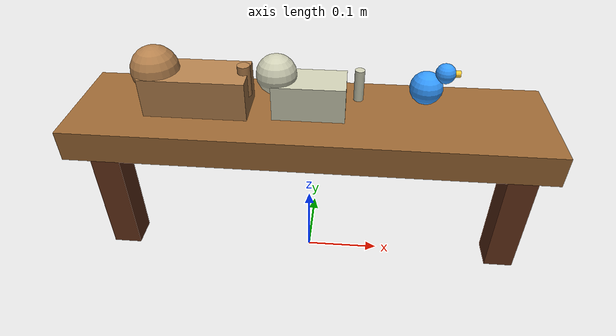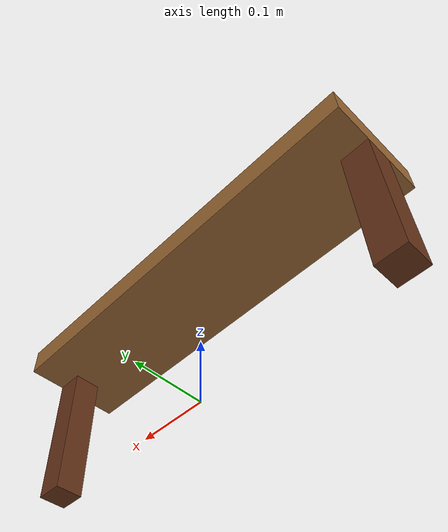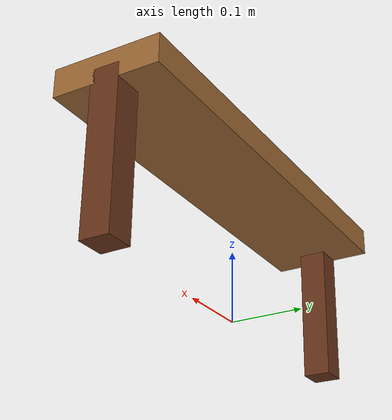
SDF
<?xml version="1.0"?>
<sdf version="1.7">
  <model name="bench_with_animals">
    <static>true</static>
    <link name="bench_link">
      <!-- Bench seat -->
      <visual name="bench_seat">
        <geometry>
          <box>
            <size>0.6 0.15 0.04</size>
          </box>
        </geometry>
        <pose>0 0 0.22 0 0 0</pose>
        <material>
          <ambient>0.6 0.4 0.2 1</ambient>
          <diffuse>0.6 0.4 0.2 1</diffuse>
        </material>
      </visual>
      <!-- Bench legs -->
      <visual name="bench_leg_left">
        <geometry>
          <box>
            <size>0.04 0.04 0.22</size>
          </box>
        </geometry>
        <pose>-0.28 0 0.11 0 0 0</pose>
        <material>
          <ambient>0.4 0.2 0.1 1</ambient>
          <diffuse>0.4 0.2 0.1 1</diffuse>
        </material>
      </visual>
      <visual name="bench_leg_right">
        <geometry>
          <box>
            <size>0.04 0.04 0.22</size>
          </box>
        </geometry>
        <pose>0.28 0 0.11 0 0 0</pose>
        <material>
          <ambient>0.4 0.2 0.1 1</ambient>
          <diffuse>0.4 0.2 0.1 1</diffuse>
        </material>
      </visual>
      <!-- Dog -->
      <visual name="dog_body">
        <geometry>
          <box>
            <size>0.13 0.06 0.06</size>
          </box>
        </geometry>
        <pose>-0.14 0 0.26 0 0 0</pose>
        <material>
          <ambient>0.7 0.5 0.3 1</ambient>
          <diffuse>0.7 0.5 0.3 1</diffuse>
        </material>
      </visual>
      <visual name="dog_head">
        <geometry>
          <sphere>
            <radius>0.03</radius>
          </sphere>
        </geometry>
        <pose>-0.19 0 0.29 0 0 0</pose>
        <material>
          <ambient>0.7 0.5 0.3 1</ambient>
          <diffuse>0.7 0.5 0.3 1</diffuse>
        </material>
      </visual>
      <visual name="dog_tail">
        <geometry>
          <cylinder>
            <radius>0.008</radius>
            <length>0.04</length>
          </cylinder>
        </geometry>
        <pose>-0.08 0 0.28 0 0 1.2</pose>
        <material>
          <ambient>0.7 0.5 0.3 1</ambient>
          <diffuse>0.7 0.5 0.3 1</diffuse>
        </material>
      </visual>
      <!-- Cat -->
      <visual name="cat_body">
        <geometry>
          <box>
            <size>0.09 0.05 0.05</size>
          </box>
        </geometry>
        <pose>0 0 0.26 0 0 0</pose>
        <material>
          <ambient>0.8 0.8 0.7 1</ambient>
          <diffuse>0.8 0.8 0.7 1</diffuse>
        </material>
      </visual>
      <visual name="cat_head">
        <geometry>
          <sphere>
            <radius>0.025</radius>
          </sphere>
        </geometry>
        <pose>-0.04 0 0.29 0 0 0</pose>
        <material>
          <ambient>0.8 0.8 0.7 1</ambient>
          <diffuse>0.8 0.8 0.7 1</diffuse>
        </material>
      </visual>
      <visual name="cat_tail">
        <geometry>
          <cylinder>
            <radius>0.006</radius>
            <length>0.04</length>
          </cylinder>
        </geometry>
        <pose>0.06 0 0.28 0 0 1.2</pose>
        <material>
          <ambient>0.8 0.8 0.7 1</ambient>
          <diffuse>0.8 0.8 0.7 1</diffuse>
        </material>
      </visual>
      <!-- Bird -->
      <visual name="bird_body">
        <geometry>
          <sphere>
            <radius>0.02</radius>
          </sphere>
        </geometry>
        <pose>0.14 0 0.28 0 0 0</pose>
        <material>
          <ambient>0.2 0.6 1 1</ambient>
          <diffuse>0.2 0.6 1 1</diffuse>
        </material>
      </visual>
      <visual name="bird_head">
        <geometry>
          <sphere>
            <radius>0.012</radius>
          </sphere>
        </geometry>
        <pose>0.16 0 0.3 0 0 0</pose>
        <material>
          <ambient>0.2 0.6 1 1</ambient>
          <diffuse>0.2 0.6 1 1</diffuse>
        </material>
      </visual>
      <visual name="bird_beak">
        <geometry>
          <cylinder>
            <radius>0.004</radius>
            <length>0.01</length>
          </cylinder>
        </geometry>
        <pose>0.172 0 0.3 0 1.57 0</pose>
        <material>
          <ambient>1 0.8 0.2 1</ambient>
          <diffuse>1 0.8 0.2 1</diffuse>
        </material>
      </visual>
    </link>
  </model>
</sdf>
